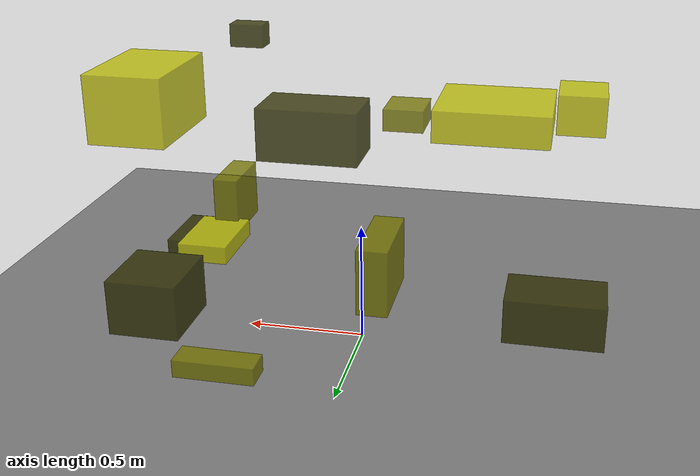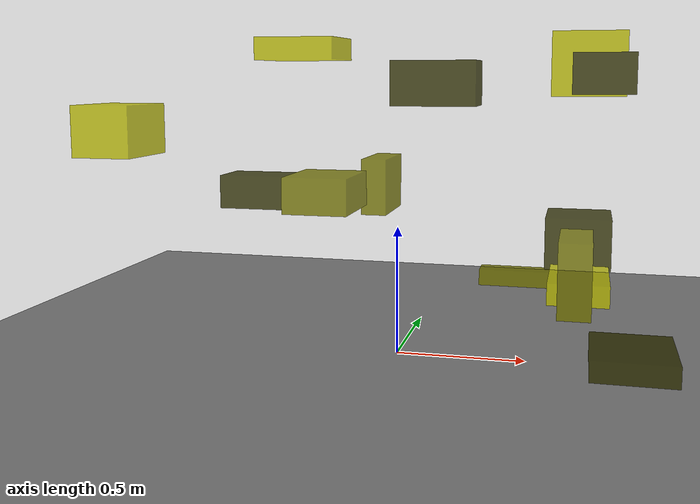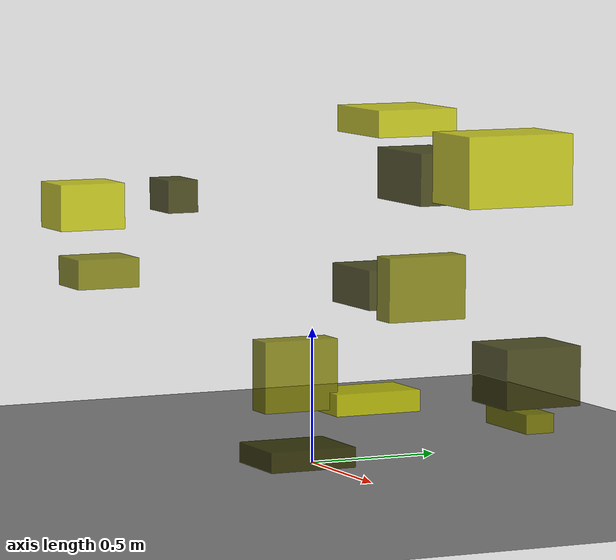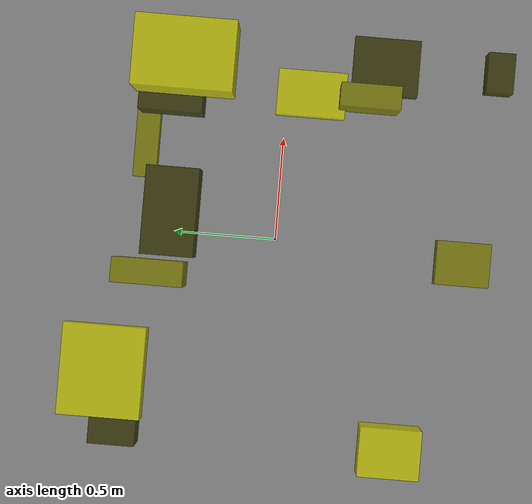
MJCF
<?xml version="1.0"?>
<mujoco model="obstacle_scene">
  <compiler angle="radian" coordinate="local"/>
  <option timestep="0.001" gravity="0 0 -9.81"/>

  <asset>
    <material name="obstacle_mat" rgba="0.8 0.8 0.0 0.8"/>
    <material name="ground_mat" rgba="0.5 0.5 0.5 1"/>
  </asset>

  <worldbody>
    <!-- Ground plane -->
    <geom name="ground" type="plane" size="3 3 0.1" material="ground_mat"/>

    <!-- Obstacles -->
    <body name="obstacle_0" pos="0.076900 0.425817 1.054518">
      <geom name="obs_0" type="box" size="0.181380 0.108575 0.095676" rgba="0.2 0.2 0.0 0.8"/>
    </body>
    <body name="obstacle_1" pos="-0.191089 0.544411 0.602561">
      <geom name="obs_1" type="box" size="0.055392 0.159111 0.121447" rgba="0.5 0.5 0.0 0.8"/>
    </body>
    <body name="obstacle_2" pos="-0.581979 0.633666 1.207279">
      <geom name="obs_2" type="box" size="0.182573 0.165883 0.051365" rgba="0.8 0.8 0.0 0.8"/>
    </body>
    <body name="obstacle_3" pos="-0.810459 0.653585 0.539218">
      <geom name="obs_3" type="box" size="0.167079 0.104784 0.077540" rgba="0.2 0.2 0.0 0.8"/>
    </body>
    <body name="obstacle_4" pos="-0.040895 -0.827766 0.747285">
      <geom name="obs_4" type="box" size="0.095505 0.116451 0.052810" rgba="0.5 0.5 0.0 0.8"/>
    </body>
    <body name="obstacle_5" pos="0.691443 -0.117465 0.336462">
      <geom name="obs_5" type="box" size="0.106584 0.160753 0.038171" rgba="0.8 0.8 0.0 0.8"/>
    </body>
    <body name="obstacle_6" pos="0.866567 -0.463881 0.189057">
      <geom name="obs_6" type="box" size="0.135437 0.157845 0.034900" rgba="0.2 0.2 0.0 0.8"/>
    </body>
    <body name="obstacle_7" pos="0.681021 -0.385300 0.439522">
      <geom name="obs_7" type="box" size="0.053909 0.137605 0.124706" rgba="0.5 0.5 0.0 0.8"/>
    </body>
    <body name="obstacle_8" pos="0.709440 0.411324 1.132364">
      <geom name="obs_8" type="box" size="0.143446 0.205026 0.126673" rgba="0.8 0.8 0.0 0.8"/>
    </body>
    <body name="obstacle_9" pos="0.682794 0.525424 0.388232">
      <geom name="obs_9" type="box" size="0.135586 0.147183 0.107729" rgba="0.2 0.2 0.0 0.8"/>
    </body>
    <body name="obstacle_10" pos="0.407604 0.648995 0.180402">
      <geom name="obs_10" type="box" size="0.158343 0.055629 0.034993" rgba="0.5 0.5 0.0 0.8"/>
    </body>
    <body name="obstacle_11" pos="-0.857629 -0.561054 0.902407">
      <geom name="obs_11" type="box" size="0.103664 0.129428 0.087362" rgba="0.8 0.8 0.0 0.8"/>
    </body>
    <body name="obstacle_12" pos="0.746008 -0.869926 1.093577">
      <geom name="obs_12" type="box" size="0.081722 0.053688 0.054760" rgba="0.2 0.2 0.0 0.8"/>
    </body>
  </worldbody>
</mujoco>
